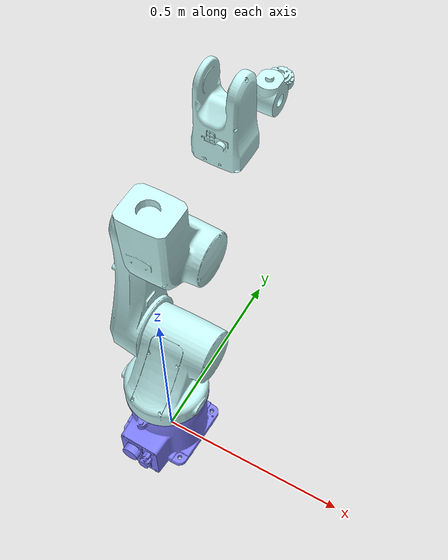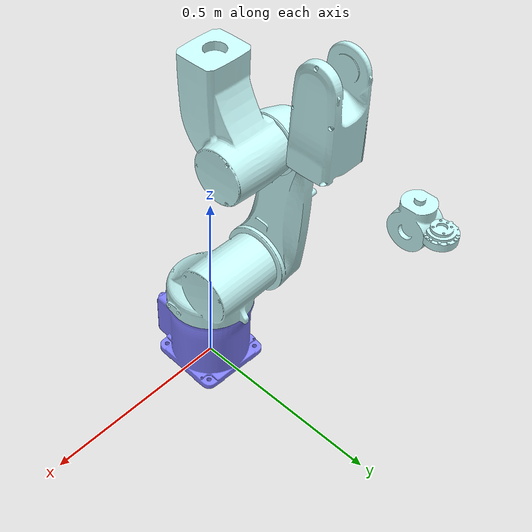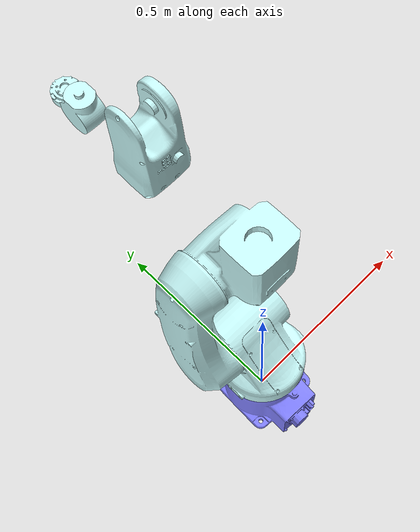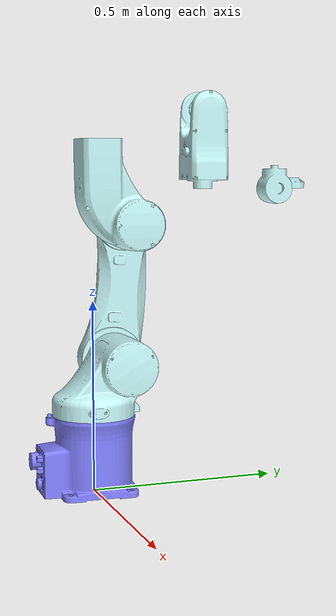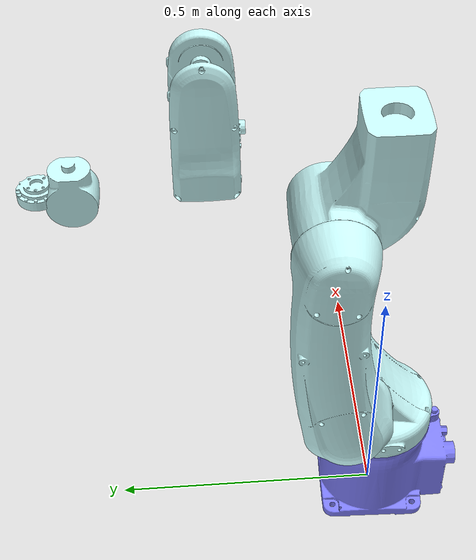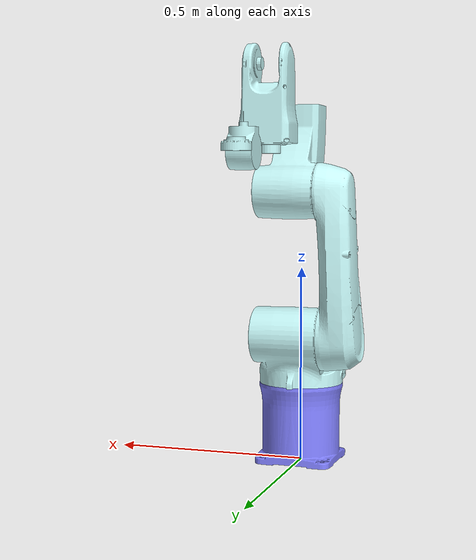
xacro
<?xml version="1.0"?>
<robot xmlns:xacro="http://www.ros.org/wiki/xacro" name="arctos">
    <xacro:arg name="initial_positions_file" default="initial_positions.yaml" />

    <!-- Import arctos urdf file -->
    <xacro:include filename="$(find arctos_description)/urdf/arctos.urdf" />

    <!-- Import control_xacro -->
    <xacro:include filename="arctos.ros2_control.xacro" />

    <xacro:arctos_ros2_control name="RealSystem" initial_positions_file="$(arg initial_positions_file)" sim="false"/>

</robot>

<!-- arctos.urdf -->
<!-- |    This document was autogenerated by xacro from arctos.xacro                   | -->
<!-- |    EDITING THIS FILE BY HAND IS NOT RECOMMENDED                                 | -->
<robot name="arctos">
  <material name="white">
    <color rgba="1.0 1.0 1.0 1.000"/>
  </material>
  <material name="black">
    <color rgba="0.0 0.0 0.0 1.0"/>
  </material>
  <material name="base_blue">
    <color rgba="0.50196 0.50196 1 1"/>
  </material>
  <material name="blue">
    <color rgba="0.78431 0.98039 0.98039 1"/>
  </material>
  <material name="gray">
    <color rgba="0.78431 0.98039 0.98039 1"/>
  </material>
  <link name="world"/>
  <joint name="world_joint" type="fixed">
    <parent link="world"/>
    <child link="base_link"/>
  </joint>
  <link name="base_link">
    <visual>
      <origin rpy="0 0 0" xyz="0 0 0"/>
      <geometry>
        <mesh filename="package://arctos_description/meshes/base_link.STL"/>
      </geometry>
      <material name="base_blue"/>
    </visual>
    <collision>
      <origin rpy="0 0 0" xyz="0 0 0"/>
      <geometry>
        <mesh filename="package://arctos_description/meshes/base_link.STL"/>
      </geometry>
    </collision>
    <inertial>
      <origin rpy="0 0 0" xyz="-0.00047006 -0.012257 0.10022"/>
      <mass value="55.785"/>
      <inertia ixx="0.39179" ixy="-0.0027323" ixz="-0.00075955" iyy="0.323" iyz="-0.022558" izz="0.34492"/>
    </inertial>
  </link>
  <link name="link_1">
    <visual>
      <origin rpy="0 0 0" xyz="0 0 0"/>
      <geometry>
        <mesh filename="package://arctos_description/meshes/link_1.STL"/>
      </geometry>
      <material name="blue"/>
    </visual>
    <collision>
      <origin rpy="0 0 0" xyz="0 0 0"/>
      <geometry>
        <mesh filename="package://arctos_description/meshes/link_1.STL"/>
      </geometry>
    </collision>
    <inertial>
      <origin rpy="0 0 0" xyz="0.0075871 0.03734 0.10645"/>
      <mass value="44.267"/>
      <inertia ixx="0.28548" ixy="-0.012987" ixz="-0.013929" iyy="0.25047" iyz="-0.073189" izz="0.26167"/>
    </inertial>
  </link>
  <link name="link_2">
    <visual>
      <origin rpy="0 0 0" xyz="0 0 0"/>
      <geometry>
        <mesh filename="package://arctos_description/meshes/link_2.STL"/>
      </geometry>
      <material name="gray"/>
    </visual>
    <collision>
      <origin rpy="0 0 0" xyz="0 0 0"/>
      <geometry>
        <mesh filename="package://arctos_description/meshes/link_2.STL"/>
      </geometry>
    </collision>
    <inertial>
      <origin rpy="0 0 0" xyz="-0.068044 0.021826 0.15762"/>
      <mass value="43.339"/>
      <inertia ixx="0.97722" ixy="0.00042244" ixz="-0.021124" iyy="0.93504" iyz="-0.078229" izz="0.099171"/>
    </inertial>
  </link>
  <link name="link_3">
    <visual>
      <origin rpy="0 0 0" xyz="0 0 0"/>
      <geometry>
        <mesh filename="package://arctos_description/meshes/link_3.STL"/>
      </geometry>
      <material name="gray"/>
    </visual>
    <collision>
      <origin rpy="0 0 0" xyz="0 0 0"/>
      <geometry>
        <mesh filename="package://arctos_description/meshes/link_3.STL"/>
      </geometry>
    </collision>
    <inertial>
      <origin rpy="0 0 0" xyz="0.054747 0.060447 0.045778"/>
      <mass value="37.594"/>
      <inertia ixx="0.31727" ixy="0.0065087" ixz="0.0048815" iyy="0.16116" iyz="-0.088578" izz="0.26582"/>
    </inertial>
  </link>
  <link name="link_4">
    <visual>
      <origin rpy="0 0 0" xyz="0 0 0"/>
      <geometry>
        <mesh filename="package://arctos_description/meshes/link_4.STL"/>
      </geometry>
      <material name="gray"/>
    </visual>
    <collision>
      <origin rpy="0 0 0" xyz="0 0 0"/>
      <geometry>
        <mesh filename="package://arctos_description/meshes/link_4.STL"/>
      </geometry>
    </collision>
    <inertial>
      <origin rpy="0 0 0" xyz="0.0051846 0.10645 0.00064606"/>
      <mass value="1.006"/>
      <inertia ixx="0.062769" ixy="-0.001868" ixz="-3.6977e-05" iyy="0.028683" iyz="0.00032273" izz="0.069443"/>
    </inertial>
  </link>
  <link name="link_5">
    <visual>
      <origin rpy="0 0 0" xyz="0 0 0"/>
      <geometry>
        <mesh filename="package://arctos_description/meshes/link_5.STL"/>
      </geometry>
      <material name="gray"/>
    </visual>
    <collision>
      <origin rpy="0 0 0" xyz="0 0 0"/>
      <geometry>
        <mesh filename="package://arctos_description/meshes/link_5.STL"/>
      </geometry>
    </collision>
    <inertial>
      <origin rpy="0 0 0" xyz="-0.00049422 0.0067098 -2.4246E-07"/>
      <mass value="0.34309"/>
      <inertia ixx="0.00034995" ixy="-1.1371e-06" ixz="1.2487e-09" iyy="0.00022745" iyz="1.4302e-09" izz="0.00030039"/>
    </inertial>
  </link>
  <link name="link_6">
    <visual>
      <origin rpy="0 0 0" xyz="0 0 0"/>
      <geometry>
        <mesh filename="package://arctos_description/meshes/link_6.STL"/>
      </geometry>
      <material name="gray"/>
    </visual>
    <collision>
      <origin rpy="0 0 0" xyz="0 0 0"/>
      <geometry>
        <mesh filename="package://arctos_description/meshes/link_6.STL"/>
      </geometry>
    </collision>
    <inertial>
      <origin rpy="0.0 0.0 0.0" xyz="3.1972E-05 0.011587 0"/>
      <mass value="0.068739"/>
      <inertia ixx="2.0617e-05" ixy="-2.849e-08" ixz="-7.3853e-22" iyy="3.4376e-05" iyz="2.1018e-21" izz="2.0453e-05"/>
    </inertial>
  </link>
  <!--Change limit of joints here-->
  <joint name="X_joint" type="revolute">
    <parent link="base_link"/>
    <child link="link_1"/>
    <origin rpy="0 0 0" xyz="0 0 0.183"/>
    <axis xyz="0 0 1"/>
    <limit effort="1" lower="-2.9671" upper="2.9671" velocity="3.0543"/>
  </joint>
  <!-- Add transmission element -->
  <transmission name="transmission_X_joint">
    <type>transmission_interface/SimpleTransmission</type>
    <joint name="X_joint">
      <hardwareInterface>hardware_interface/PositionJointInterface</hardwareInterface>
    </joint>
    <actuator name="X_joint_motor">
      <mechanicalReduction>1.0</mechanicalReduction>
    </actuator>
  </transmission>
  <joint name="Y_joint" type="revolute">
    <parent link="link_1"/>
    <child link="link_2"/>
    <origin rpy="0 0 0" xyz="-0.048 0.075 0.15"/>
    <axis xyz="-1 0 0"/>
    <limit effort="1" lower="-1.7453" upper="2.3562" velocity="3.4907"/>
  </joint>
  <!-- Add transmission element -->
  <transmission name="transmission_Y_joint">
    <type>transmission_interface/SimpleTransmission</type>
    <joint name="Y_joint">
      <hardwareInterface>hardware_interface/PositionJointInterface</hardwareInterface>
    </joint>
    <actuator name="Y_joint_motor">
      <mechanicalReduction>1.0</mechanicalReduction>
    </actuator>
  </transmission>
  <joint name="Z_joint" type="revolute">
    <parent link="link_2"/>
    <child link="link_3"/>
    <origin rpy="0 0 0" xyz="0 0.029976 0.36377"/>
    <axis xyz="-1 0 0"/>
    <limit effort="1" lower="-2.0769" upper="2.9496" velocity="3.4907"/>
  </joint>
  <!-- Add transmission element -->
  <transmission name="transmission_Z_joint">
    <type>transmission_interface/SimpleTransmission</type>
    <joint name="Z_joint">
      <hardwareInterface>hardware_interface/PositionJointInterface</hardwareInterface>
    </joint>
    <actuator name="Z_joint_motor">
      <mechanicalReduction>1.0</mechanicalReduction>
    </actuator>
  </transmission>
  <joint name="A_joint" type="revolute">
    <parent link="link_3"/>
    <child link="link_4"/>
    <origin rpy="0 0 0" xyz="0.048 0.198 0.09"/>
    <axis xyz="0.0 1.0 0.0"/>
    <limit effort="1" lower="-3.3161" upper="3.3161" velocity="5.236"/>
  </joint>
  <!-- Add transmission element -->
  <transmission name="transmission_A_joint">
    <type>transmission_interface/SimpleTransmission</type>
    <joint name="A_joint">
      <hardwareInterface>hardware_interface/PositionJointInterface</hardwareInterface>
    </joint>
    <actuator name="A_joint_motor">
      <mechanicalReduction>1.0</mechanicalReduction>
    </actuator>
  </transmission>
  <joint name="B_joint" type="revolute">
    <parent link="link_4"/>
    <child link="link_5"/>
    <origin rpy="0 0 0" xyz="0 0.207 0"/>
    <axis xyz="1 0 0"/>
    <limit effort="1" lower="-2.0944" upper="2.0944" velocity="5.236"/>
  </joint>
  <!-- Add transmission element -->
  <transmission name="transmission_B_joint">
    <type>transmission_interface/SimpleTransmission</type>
    <joint name="B_joint">
      <hardwareInterface>hardware_interface/PositionJointInterface</hardwareInterface>
    </joint>
    <actuator name="B_joint_motor">
      <mechanicalReduction>1.0</mechanicalReduction>
    </actuator>
  </transmission>
  <joint name="C_joint" type="revolute">
    <parent link="link_5"/>
    <child link="link_6"/>
    <origin rpy="0 0 0" xyz="0 0.052 0"/>
    <axis xyz="0.0 1.0 0.0"/>
    <limit effort="1" lower="-6.2832" upper="6.2832" velocity="8.3776"/>
  </joint>
  <!-- Add transmission element -->
  <transmission name="transmission_C_joint">
    <type>transmission_interface/SimpleTransmission</type>
    <joint name="C_joint">
      <hardwareInterface>hardware_interface/PositionJointInterface</hardwareInterface>
    </joint>
    <actuator name="C_joint_motor">
      <mechanicalReduction>1.0</mechanicalReduction>
    </actuator>
  </transmission>
</robot>
